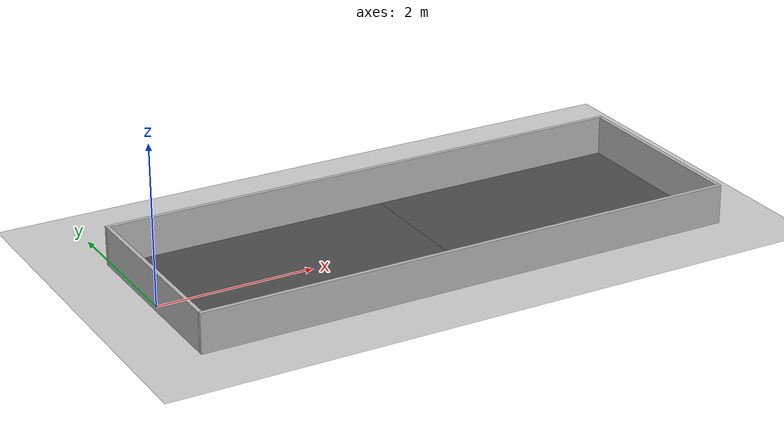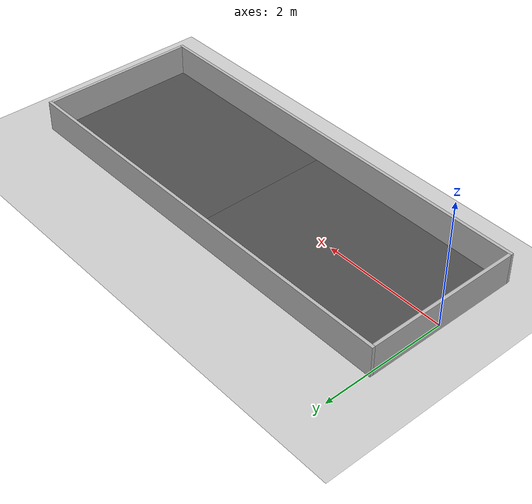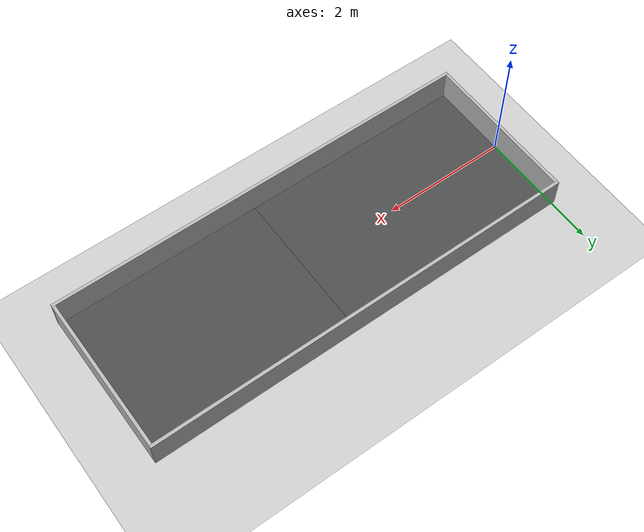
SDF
<?xml version="1.0"?>
<sdf version='1.4'>
  <world name='default'>
    <light name='sun' type='directional'>
      <cast_shadows>1</cast_shadows>
      <pose>0 0 10 0 -0 0</pose>
      <diffuse>0.8 0.8 0.8 1</diffuse>
      <specular>0.2 0.2 0.2 1</specular>
      <attenuation>
        <range>1000</range>
        <constant>0.9</constant>
        <linear>0.01</linear>
        <quadratic>0.001</quadratic>
      </attenuation>
      <direction>-0.5 0.1 -0.9</direction>
    </light>
    <physics type='ode'>
      <max_step_size>0.01</max_step_size>
      <real_time_factor>1</real_time_factor>
      <real_time_update_rate>100</real_time_update_rate>
      <gravity>0 0 -9.8</gravity>
    </physics>
    <scene>
      <ambient>0.4 0.4 0.4 1</ambient>
      <background>0.7 0.7 0.7 1</background>
      <shadows>1</shadows>
    </scene>
    <model name='ground_plane'>
      <static>1</static>
      <link name='link'>
        <collision name='collision'>
          <geometry>
            <plane>
              <normal>0 0 1</normal>
              <size>100 100</size>
            </plane>
          </geometry>
          <surface>
            <friction>
              <ode>
                <mu>100</mu>
                <mu2>50</mu2>
              </ode>
            </friction>
            <bounce/>
            <contact>
              <ode/>
            </contact>
          </surface>
          <max_contacts>10</max_contacts>
        </collision>
        <visual name='visual'>
          <cast_shadows>0</cast_shadows>
          <geometry>
            <plane>
              <normal>0 0 1</normal>
              <size>100 100</size>
            </plane>
          </geometry>
          <material>
            <script>
              <uri>file://media/materials/scripts/gazebo.material</uri>
              <name>Gazebo/Grey</name>
            </script>
          </material>
          <pose>0 0 -0.01 0 0 0</pose>
        </visual>
        <velocity_decay>
          <linear>0</linear>
          <angular>0</angular>
        </velocity_decay>
        <self_collide>0</self_collide>
        <kinematic>0</kinematic>
        <gravity>1</gravity>
      </link>
    </model>

    <model name='near_wall'>
      <static>1</static>

      <link name='link'>

        <visual name='visual'>
          <geometry>
            <box>
              <size>0.05 2.51 0.5</size>
            </box>
          </geometry>
        </visual>

        <collision name='collision'>
          <pose>0 0 0 0 0 0</pose>
          <geometry>
            <box>
              <size>0.05 2.51 0.5</size>
            </box>
          </geometry>
          <max_contacts>10</max_contacts>
          <surface>
            <bounce/>
            <friction>
              <ode/>
            </friction>
            <contact>
              <ode/>
            </contact>
          </surface>
        </collision>

        <velocity_decay>
          <linear>0</linear>
          <angular>0</angular>
        </velocity_decay>
        <self_collide>0</self_collide>
        <kinematic>0</kinematic>
        <gravity>1</gravity>
      </link>
      <pose>-0.025 0 0.25 0 0 0</pose>
    </model>

    <model name='far_wall'>
      <static>1</static>

      <link name='link'>

        <visual name='visual'>
          <geometry>
            <box>
              <size>0.05 2.51 0.5</size>
            </box>
          </geometry>
        </visual>

        <collision name='collision'>
          <pose>0 0 0 0 0 0</pose>
          <geometry>
            <box>
              <size>0.05 2.51 0.5</size>
            </box>
          </geometry>
          <max_contacts>10</max_contacts>
          <surface>
            <bounce/>
            <friction>
              <ode/>
            </friction>
            <contact>
              <ode/>
            </contact>
          </surface>
        </collision>

        <velocity_decay>
          <linear>0</linear>
          <angular>0</angular>
        </velocity_decay>
        <self_collide>0</self_collide>
        <kinematic>0</kinematic>
        <gravity>1</gravity>
      </link>
      <pose>6.909 0 0.25 0 0 0</pose>
    </model>

    <model name='left_wall'>
      <static>1</static>

      <link name='link'>

        <visual name='visual'>
          <geometry>
            <box>
              <size>6.984 0.05 0.5</size>
            </box>
          </geometry>
        </visual>

        <collision name='collision'>
          <pose>0 0 0 0 0 0</pose>
          <geometry>
            <box>
              <size>6.984 0.05 0.5</size>
            </box>
          </geometry>
          <max_contacts>10</max_contacts>
          <surface>
            <bounce/>
            <friction>
              <ode/>
            </friction>
            <contact>
              <ode/>
            </contact>
          </surface>
        </collision>

        <velocity_decay>
          <linear>0</linear>
          <angular>0</angular>
        </velocity_decay>
        <self_collide>0</self_collide>
        <kinematic>0</kinematic>
        <gravity>1</gravity>
      </link>
      <pose>3.442 1.278 0.25 0 0 0</pose>
    </model>

    <model name='right_wall'>
      <static>1</static>

      <link name='link'>

        <visual name='visual'>
          <geometry>
            <box>
              <size>6.984 0.05 0.5</size>
            </box>
          </geometry>
        </visual>

        <collision name='collision'>
          <pose>0 0 0 0 0 0</pose>
          <geometry>
            <box>
              <size>6.984 0.05 0.5</size>
            </box>
          </geometry>
          <max_contacts>10</max_contacts>
          <surface>
            <bounce/>
            <friction>
              <ode/>
            </friction>
            <contact>
              <ode/>
            </contact>
          </surface>
        </collision>

        <velocity_decay>
          <linear>0</linear>
          <angular>0</angular>
        </velocity_decay>
        <self_collide>0</self_collide>
        <kinematic>0</kinematic>
        <gravity>1</gravity>
      </link>
      <pose>3.442 -1.278 0.25 0 0 0</pose>
    </model>

    <model name='navigation_plane'>
      <static>1</static>
      <link name='link'>
        <collision name='collision'>
          <geometry>
            <box>
              <size>3.616 2.51 0.1</size>
            </box>
          </geometry>
          <max_contacts>10</max_contacts>
          <surface>
            <bounce/>
            <friction>
              <ode/>
            </friction>
            <contact>
              <ode/>
            </contact>
          </surface>
        </collision>
        <visual name='visual'>
          <cast_shadows>0</cast_shadows>
          <geometry>
            <box>
              <size>3.616 2.51 0.1</size>
            </box>
          </geometry>
          <material>
            <script>
              <uri>file://media/materials/scripts/gazebo.material</uri>
              <name>Gazebo/Road</name>
            </script>
          </material>
        </visual>
        <velocity_decay>
          <linear>0</linear>
          <angular>0</angular>
        </velocity_decay>
        <self_collide>0</self_collide>
        <kinematic>0</kinematic>
        <gravity>1</gravity>
      </link>
      <pose>1.808 0 -0.05 0 -0 0</pose>
    </model>

    <model name='excavation_plane'>
      <static>1</static>
      <link name='link'>
        <collision name='collision'>
          <geometry>
            <box>
              <size>3.268 2.51 0.1</size>
            </box>
          </geometry>
          <max_contacts>10</max_contacts>
          <surface>
            <bounce/>
            <friction>
              <ode/>
            </friction>
            <contact>
              <ode/>
            </contact>
          </surface>
        </collision>
        <visual name='visual'>
          <cast_shadows>0</cast_shadows>
          <geometry>
            <box>
              <size>3.268 2.51 0.1</size>
            </box>
          </geometry>
          <material>
            <script>
              <uri>model://asphalt_plane/materials/scripts</uri>
              <uri>model://asphalt_plane/materials/textures</uri>
              <name>vrc/asphalt</name>
            </script>
          </material>
        </visual>
        <velocity_decay>
          <linear>0</linear>
          <angular>0</angular>
        </velocity_decay>
        <self_collide>0</self_collide>
        <kinematic>0</kinematic>
        <gravity>1</gravity>
      </link>
      <pose>5.25 0 -0.05 0 -0 0</pose>
    </model>

    <gui fullscreen='0'>
      <camera name='user_camera'>
        <pose>16.2337 1.23674 17.6497 0 0.923643 -3.08299</pose>
        <view_controller>orbit</view_controller>
      </camera>
    </gui>
  </world>
</sdf>
